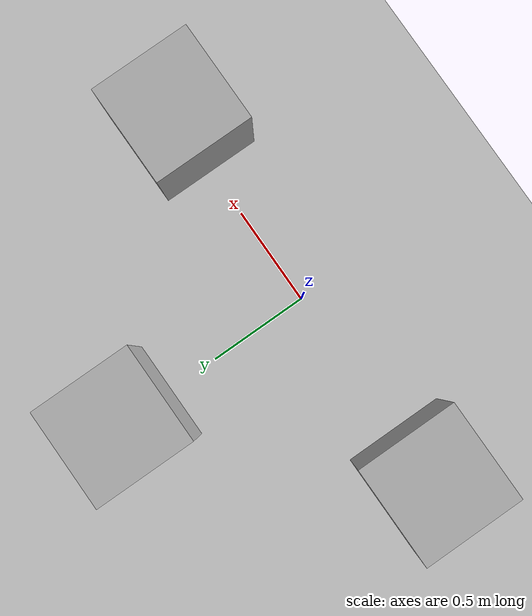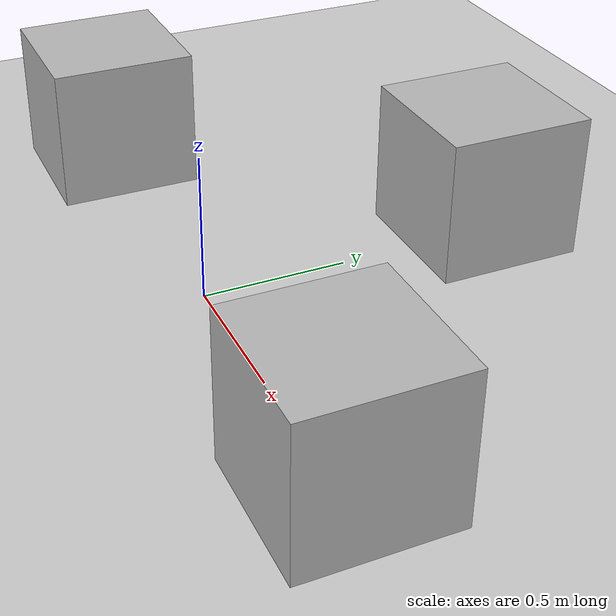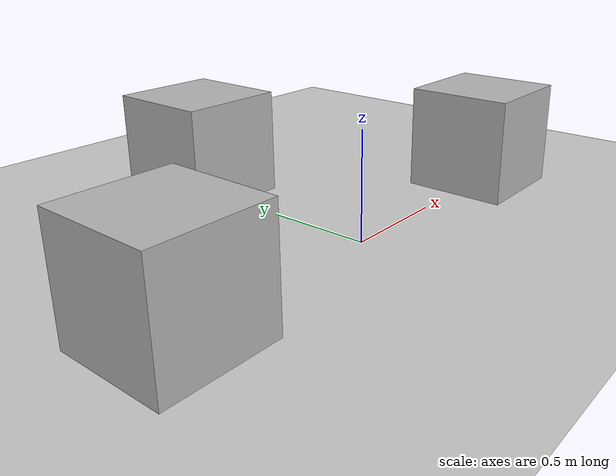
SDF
<sdf version="1.6">
  <world name="default_world">
    <!-- Include the default ground plane -->
    <include>
      <uri>model://ground_plane</uri>
    </include>

    <!-- Include the default sun -->
    <include>
      <uri>model://sun</uri>
    </include>

    <!-- Plugin to receive the states (positions) of the entities -->
    <plugin name="gazebo_ros_state" filename="libgazebo_ros_state.so">
      <ros>
        <namespace>/gazebo</namespace>
      </ros>

      <update_rate>1.0</update_rate>  <!-- Update rate of 1 Hz -->
    </plugin>

    <!-- Model for cube 1 -->
    <model name="cube1">
      <static>false</static>
      <pose>1 0 0.25 0 0 0</pose>       <!-- Position and orientation -->
      <link name="link">
        <pose>0 0 0 0 0 0</pose>        <!-- Position and orientation of movement axes relative to the center -->
        <inertial>
          <mass>1.0</mass>
          <inertia>
            <ixx>0.1</ixx>
            <iyy>0.1</iyy>
            <izz>0</izz>
          </inertia>
        </inertial>
        <collision name="collision">
          <geometry>
            <box>
              <size>0.5 0.5 0.5</size>  <!-- Dimensions -->
            </box>
          </geometry>
        </collision>
        <visual name="visual">
          <geometry>
            <box>
              <size>0.5 0.5 0.5</size>
            </box>
          </geometry>
        </visual>
      </link>
    </model>

    <!-- Model for cube 2 -->
    <model name="cube2">
      <static>false</static>
      <pose>-1 0 0.25 0 0 0</pose>      <!-- Position and orientation -->
      <link name="link">
        <pose>0 0 0 0 0 0</pose>        <!-- Position and orientation of movement axes relative to the center -->
        <inertial>
          <mass>1.0</mass>
          <inertia>
            <ixx>0.1</ixx>
            <iyy>0.1</iyy>
            <izz>0</izz>
          </inertia>
        </inertial>
        <collision name="collision">
          <geometry>
            <box>
              <size>0.5 0.5 0.5</size>  <!-- Dimensions -->
            </box>
          </geometry>
        </collision>
        <visual name="visual">
          <geometry>
            <box>
              <size>0.5 0.5 0.5</size>
            </box>
          </geometry>
        </visual>
      </link>
    </model>

    <!-- Model for cube 3 -->
    <model name="cube3">
      <static>false</static>
      <pose>0 1 0.25 0 0 0</pose>       <!-- Position and orientation -->
      <link name="link">
        <pose>0 0 0 0 0 0</pose>        <!-- Position and orientation of movement axes relative to the center -->
        <inertial>
          <mass>1.0</mass>
          <inertia>
            <ixx>0</ixx>
            <iyy>0</iyy>
            <izz>0</izz>
          </inertia>
        </inertial>
        <collision name="collision">
          <geometry>
            <box>
              <size>0.5 0.5 0.5</size>  <!-- Dimensions -->
            </box>
          </geometry>
        </collision>
        <visual name="visual">
          <geometry>
            <box>
              <size>0.5 0.5 0.5</size>
            </box>
          </geometry>
        </visual>
      </link>
    </model>

  </world>
</sdf>
